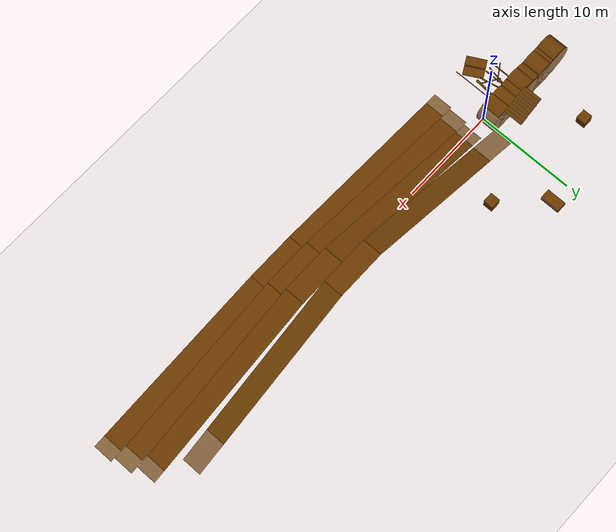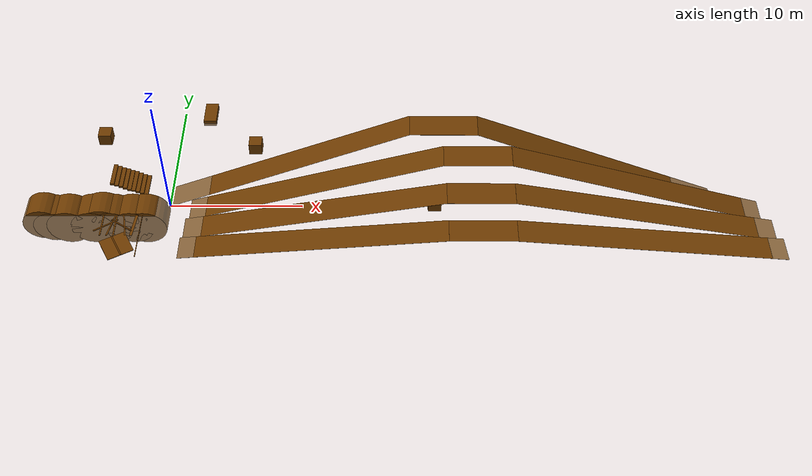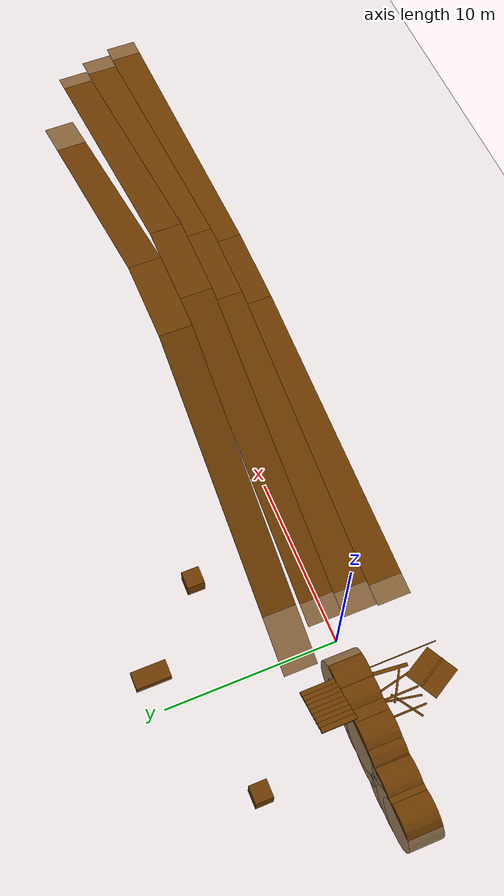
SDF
<?xml version="1.0" ?>
<sdf version="1.5">
    <world name="default">

        <physics type="ode">
        <max_step_size>0.0002</max_step_size>
        <real_time_factor>1</real_time_factor>
        <real_time_update_rate>5000</real_time_update_rate>
        <gravity>0 0 -9.81</gravity>
            <ode>
                <solver>
                <type>quick</type>
                <iters>50</iters>
                <sor>1.3</sor>
                </solver>
                <constraints>
                <cfm>0.0</cfm>
                <erp>0.2</erp>
                <contact_max_correcting_vel>10.0</contact_max_correcting_vel>
                <contact_surface_layer>0.001</contact_surface_layer>
                </constraints>
            </ode>
        </physics>

        <scene>
        <sky>
            <clouds>
                <speed>12</speed>
            </clouds>
        </sky>
        </scene>
        <!-- A global light source -->
        <include>
            <uri>model://sun</uri>
        </include>
        <!-- A ground plane -->
        <include>
            <uri>model://ground_plane</uri>
        </include>

        <!-- environment blocks, obstacles or stairs -->

        <model name="static_environment">
            <static>true</static>

            <link name="static_box1">
                <pose>6 6 0.5 0 0 0</pose>
                <collision name="static_box_collision">
                    <geometry>
                        <box>
                            <size>1 1 1</size>
                        </box>
                    </geometry>
                </collision>
                <visual name="static_box_visual">
                    <geometry>
                        <box>
                            <size>1 1 1</size>
                        </box>
                    </geometry>
                    <material>
                        <ambient>0.2 0.2 0.2 1.0</ambient>
                        <diffuse>.421 0.225 0.0 1.0</diffuse>
                    </material>
                </visual>
            </link>

            <link name="static_box2">
                <pose>20 0 0.5 0 0 0</pose>
                <collision name="static_box_collision">
                    <geometry>
                        <box>
                            <size>1 1 1</size>
                        </box>
                    </geometry>
                </collision>
                <visual name="static_box_visual">
                    <geometry>
                        <box>
                            <size>1 1 1</size>
                        </box>
                    </geometry>
                    <material>
                        <ambient>0.2 0.2 0.2 1.0</ambient>
                        <diffuse>.421 0.225 0.0 1.0</diffuse>
                    </material>
                </visual>
            </link>

            <link name="static_box3">
                <pose>-6 7 0.5 0 0 0</pose>
                <collision name="static_box_collision">
                    <geometry>
                        <box>
                            <size>1 1 1</size>
                        </box>
                    </geometry>
                </collision>
                <visual name="static_box_visual">
                    <geometry>
                        <box>
                            <size>1 1 1</size>
                        </box>
                    </geometry>
                    <material>
                        <ambient>0.2 0.2 0.2 1.0</ambient>
                        <diffuse>.421 0.225 0.0 1.0</diffuse>
                    </material>
                </visual>
            </link>
        </model>

        <model name="slope0">
                <static>true</static>
                <!-- 斜坡的物理属性 -->
                <link name="slope_physics0">
                    <pose>8.85 2.2 2.5 0 -0.4 0</pose>
                    <collision name="slope_collision">
                        <geometry>
                            <box>
                                <size>20 2 0.01</size>
                            </box>
                        </geometry>
                    </collision>
                    <visual name="slope_visual">
                        <geometry>
                            <box>
                                <size>20 2 0.01</size>
                            </box>
                        </geometry>
                        <material>
                            <ambient>0.2 0.2 0.2 1.0</ambient>
                            <diffuse>.421 0.225 0.0 1.0</diffuse>
                        </material>
                    </visual>
                    <gravity>true</gravity> <!-- 启用重力 -->
                    <self_collide>true</self_collide> <!-- 允许自身碰撞 -->
                </link>
            </model>

        <model name="slope0_2">
            <static>true</static>
            <link name="slope_physics0_2">
                <pose>20.56 2.2 6.394 0 0 0</pose>
                <collision name="slope_collision">
                    <geometry>
                        <box>
                            <size>5 2 0.01</size>
                        </box>
                    </geometry>
                    <friction>
                        <ode>
                            <mu>1.5</mu> <!-- 设置摩擦系数 -->
                        </ode>
                    </friction>
                </collision>

                <visual name="slope_visual">
                    <geometry>
                        <box>
                            <size>5 2 0.01</size>
                        </box>
                    </geometry>
                    <material>
                        <ambient>0.2 0.2 0.2 1.0</ambient>
                        <diffuse>.421 0.225 0.0 1.0</diffuse>
                    </material>
                </visual>
                <gravity>true</gravity> <!-- 启用重力 -->
                <self_collide>true</self_collide> <!-- 允许自身碰撞 -->
            </link>
        </model>

        <model name="slope0_3">
                <static>true</static>
                <!-- 斜坡的物理属性 -->
                <link name="slope_physics0_3">
                    <pose>32.25 2.2 2.5 0 0.4 0</pose>
                    <collision name="slope_collision">
                        <geometry>
                            <box>
                                <size>20 2 0.01</size>
                            </box>
                        </geometry>
                    </collision>
                    <visual name="slope_visual">
                        <geometry>
                            <box>
                                <size>20 2 0.01</size>
                            </box>
                        </geometry>
                        <material>
                            <ambient>0.2 0.2 0.2 1.0</ambient>
                            <diffuse>.421 0.225 0.0 1.0</diffuse>
                        </material>
                    </visual>
                    <gravity>true</gravity> <!-- 启用重力 -->
                    <self_collide>true</self_collide> <!-- 允许自身碰撞 -->
                </link>
            </model>

        <model name="slope">
            <static>true</static>
            <!-- 斜坡的物理属性 -->
            <link name="slope_physics">
                <pose>11 0 2.5 0 -0.3 0</pose>

                <collision name="slope_collision">
                    <geometry>
                        <box>
                            <size>20 2 0.01</size>
                        </box>
                    </geometry>
                    <friction>
                        <ode>
                            <mu>10000000</mu>
                            <mu2>10000000</mu2>
                        </ode>
                    </friction>
                </collision>

                <visual name="slope_visual">
                    <geometry>
                        <box>
                            <size>20 2 0.01</size>
                        </box>
                    </geometry>
                    <material>
                        <ambient>0.2 0.2 0.2 1.0</ambient>
                        <diffuse>.421 0.225 0.0 1.0</diffuse>
                    </material>
                </visual>
                <gravity>true</gravity> <!-- 启用重力 -->
                <self_collide>true</self_collide> <!-- 允许自身碰撞 -->
            </link>
        </model>

        <model name="slope1_2">
            <static>true</static>
            <!-- 斜坡的物理属性 -->
            <link name="slope_physics1_2">
                <pose>23.05 0 5.45 0 0 0</pose>
                <collision name="slope_collision">
                    <geometry>
                        <box>
                            <size>5 2 0.01</size>
                        </box>
                    </geometry>
                    <friction>
                        <ode>
                            <mu>10000000</mu>
                            <mu2>10000000</mu2>
                        </ode>
                    </friction>
                </collision>

                <visual name="slope_visual">
                    <geometry>
                        <box>
                            <size>5 2 0.01</size>
                        </box>
                    </geometry>
                    <material>
                        <ambient>0.2 0.2 0.2 1.0</ambient>
                        <diffuse>.421 0.225 0.0 1.0</diffuse>
                    </material>
                </visual>
                <gravity>true</gravity> <!-- 启用重力 -->
                <self_collide>true</self_collide> <!-- 允许自身碰撞 -->
            </link>
        </model>

        <model name="slope1_3">
            <static>true</static>
            <link name="slope_physics1_3">
                <pose>35.1 0 2.5 0 0.3 0</pose>
                <collision name="slope_collision">
                    <geometry>
                        <box>
                            <size>20 2 0.01</size>
                        </box>
                    </geometry>
                    <friction>
                        <ode>
                            <mu>10000000</mu>
                            <mu2>10000000</mu2>
                        </ode>
                    </friction>
                </collision>

                <visual name="slope_visual">
                    <geometry>
                        <box>
                            <size>20 2 0.01</size>
                        </box>
                    </geometry>
                    <material>
                        <ambient>0.2 0.2 0.2 1.0</ambient>
                        <diffuse>.421 0.225 0.0 1.0</diffuse>
                    </material>
                </visual>
                <gravity>true</gravity> <!-- 启用重力 -->
                <self_collide>true</self_collide> <!-- 允许自身碰撞 -->
            </link>
        </model>

        <model name="slope2">
            <static>true</static>
            <link name="slope_physics2">
                <pose>11 -2 1.64 0 -0.2 0</pose>
                <collision name="slope_collision">
                    <geometry>
                        <box>
                            <size>20 2 0.01</size>
                        </box>
                    </geometry>
                    <friction>
                        <ode>
                            <mu>1.5</mu> <!-- 设置摩擦系数 -->
                        </ode>
                    </friction>
                </collision>

                <visual name="slope_visual">
                    <geometry>
                        <box>
                            <size>20 2 0.01</size>
                        </box>
                    </geometry>
                    <material>
                        <ambient>0.2 0.2 0.2 1.0</ambient>
                        <diffuse>.421 0.225 0.0 1.0</diffuse>
                    </material>
                </visual>
                <gravity>true</gravity> <!-- 启用重力 -->
                <self_collide>true</self_collide> <!-- 允许自身碰撞 -->
            </link>
        </model>

        <model name="slope2_2">
            <static>true</static>
            <link name="slope_physics2_2">
                <pose>23.3 -2 3.625 0 0 0</pose>
                <collision name="slope_collision">
                    <geometry>
                        <box>
                            <size>5 2 0.01</size>
                        </box>
                    </geometry>
                    <friction>
                        <ode>
                            <mu>1.5</mu> <!-- 设置摩擦系数 -->
                        </ode>
                    </friction>
                </collision>

                <visual name="slope_visual">
                    <geometry>
                        <box>
                            <size>5 2 0.01</size>
                        </box>
                    </geometry>
                    <material>
                        <ambient>0.2 0.2 0.2 1.0</ambient>
                        <diffuse>.421 0.225 0.0 1.0</diffuse>
                    </material>
                </visual>
                <gravity>true</gravity> <!-- 启用重力 -->
                <self_collide>true</self_collide> <!-- 允许自身碰撞 -->
            </link>
        </model>

        <model name="slope2_3">
            <static>true</static>
            <link name="slope_physics2_3">
                <pose>35.6 -2 1.64 0 0.2 0</pose>
                <collision name="slope_collision">
                    <geometry>
                        <box>
                            <size>20 2 0.01</size>
                        </box>
                    </geometry>
                    <friction>
                        <ode>
                            <mu>1.5</mu> <!-- 设置摩擦系数 -->
                        </ode>
                    </friction>
                </collision>

                <visual name="slope_visual">
                    <geometry>
                        <box>
                            <size>20 2 0.01</size>
                        </box>
                    </geometry>
                    <material>
                        <ambient>0.2 0.2 0.2 1.0</ambient>
                        <diffuse>.421 0.225 0.0 1.0</diffuse>
                    </material>
                </visual>
                <gravity>true</gravity> <!-- 启用重力 -->
                <self_collide>true</self_collide> <!-- 允许自身碰撞 -->
            </link>
        </model>

        <model name="slope3">
            <static>true</static>
            <!-- 斜坡的物理属性 -->
            <link name="slope_physics3">
                <pose>11 -4 0.81 0 -0.1 0</pose>

                <collision name="slope_collision">
                    <geometry>
                        <box>
                            <size>20 2 0.01</size>
                        </box>
                    </geometry>
                    <friction>
                        <ode>
                            <mu>1.5</mu> <!-- 设置摩擦系数 -->
                        </ode>
                    </friction>
                </collision>

                <visual name="slope_visual">
                    <geometry>
                        <box>
                            <size>20 2 0.01</size>
                        </box>
                    </geometry>
                    <material>
                        <ambient>0.2 0.2 0.2 1.0</ambient>
                        <diffuse>.421 0.225 0.0 1.0</diffuse>
                    </material>
                </visual>
                <gravity>true</gravity> <!-- 启用重力 -->
                <self_collide>true</self_collide> <!-- 允许自身碰撞 -->
            </link>
        </model>

        <model name="slope3_2">
            <static>true</static>
            <!-- 斜坡的物理属性 -->
            <link name="slope_physics3_2">
                <pose>23.45 -4 1.81 0 0 0</pose>

                <collision name="slope_collision">
                    <geometry>
                        <box>
                            <size>5 2 0.01</size>
                        </box>
                    </geometry>
                    <friction>
                        <ode>
                            <mu>1.5</mu> <!-- 设置摩擦系数 -->
                        </ode>
                    </friction>
                </collision>

                <visual name="slope_visual">
                    <geometry>
                        <box>
                            <size>5 2 0.01</size>
                        </box>
                    </geometry>
                    <material>
                        <ambient>0.2 0.2 0.2 1.0</ambient>
                        <diffuse>.421 0.225 0.0 1.0</diffuse>
                    </material>
                </visual>
                <gravity>true</gravity> <!-- 启用重力 -->
                <self_collide>true</self_collide> <!-- 允许自身碰撞 -->
            </link>
        </model>

        <model name="slope3_3">
            <static>true</static>
            <!-- 斜坡的物理属性 -->
            <link name="slope_physics3_3">
                <pose>35.9 -4 0.81 0 0.1 0</pose>

                <collision name="slope_collision">
                    <geometry>
                        <box>
                            <size>20 2 0.01</size>
                        </box>
                    </geometry>
                    <friction>
                        <ode>
                            <mu>1.5</mu> <!-- 设置摩擦系数 -->
                        </ode>
                    </friction>
                </collision>

                <visual name="slope_visual">
                    <geometry>
                        <box>
                            <size>20 2 0.01</size>
                        </box>
                    </geometry>
                    <material>
                        <ambient>0.2 0.2 0.2 1.0</ambient>
                        <diffuse>.421 0.225 0.0 1.0</diffuse>
                    </material>
                </visual>
                <gravity>true</gravity> <!-- 启用重力 -->
                <self_collide>true</self_collide> <!-- 允许自身碰撞 -->
            </link>
        </model>

        <model name="thread_hold1">
            <static>true</static>
            <link name="thread_hold_physics_1">
                <pose>-2 -3 0.025 0 0 0</pose>
                <collision name="thread_hold_collision">
                    <geometry>
                        <box>
                            <size>0.05 4 0.05</size>
                        </box>
                    </geometry>
                    <friction>
                        <ode>
                            <mu>1.5</mu> <!-- 设置摩擦系数 -->
                        </ode>
                    </friction>
                </collision>
                <visual name="thread_hold_visual">
                    <geometry>
                        <box>
                            <size>0.05 4 0.05</size>
                        </box>
                    </geometry>
                    <material>
                        <ambient>0.2 0.2 0.2 1.0</ambient>
                        <diffuse>.421 0.225 0.0 1.0</diffuse>
                    </material>
                </visual>
                <gravity>true</gravity> <!-- 启用重力 -->
                <self_collide>true</self_collide> <!-- 允许自身碰撞 -->
            </link>
        </model>

        <model name="thread_hold2">
            <static>true</static>
            <link name="thread_hold_physics_2">
                <pose>-3.5 -4 0.025 0 0 0.5</pose>
                <collision name="thread_hold_collision">
                    <geometry>
                        <box>
                            <size>2 2 0.05</size>
                        </box>
                    </geometry>
                    <friction>
                        <ode>
                            <mu>1.5</mu> <!-- 设置摩擦系数 -->
                        </ode>
                    </friction>
                </collision>
                <visual name="thread_hold_visual">
                    <geometry>
                        <box>
                            <size>2 2 0.05</size>
                        </box>
                    </geometry>
                    <material>
                        <ambient>0.2 0.2 0.2 1.0</ambient>
                        <diffuse>.421 0.225 0.0 1.0</diffuse>
                    </material>
                </visual>
                <gravity>true</gravity> <!-- 启用重力 -->
                <self_collide>true</self_collide> <!-- 允许自身碰撞 -->
            </link>
        </model>

        <model name="thread_hold2_1">
            <static>true</static>
            <link name="thread_hold_physics_2_1">
                <pose>-3.5 -4 0.075 0 0 0.5</pose>
                <collision name="thread_hold_collision">
                    <geometry>
                        <box>
                            <size>0.1 2 0.05</size>
                        </box>
                    </geometry>
                    <friction>
                        <ode>
                            <mu>1.5</mu> <!-- 设置摩擦系数 -->
                        </ode>
                    </friction>
                </collision>
                <visual name="thread_hold_visual">
                    <geometry>
                        <box>
                            <size>0.1 2 0.05</size>
                        </box>
                    </geometry>
                    <material>
                        <ambient>0.2 0.2 0.2 1.0</ambient>
                        <diffuse>.421 0.225 0.0 1.0</diffuse>
                    </material>
                </visual>
                <gravity>true</gravity> <!-- 启用重力 -->
                <self_collide>true</self_collide> <!-- 允许自身碰撞 -->
            </link>
        </model>

        <model name="thread_hold3">
            <static>true</static>
            <link name="thread_hold_physics_3">
                <pose>-2.5 -2 0.025 0 0 -0.1</pose>
                <collision name="thread_hold_collision">
                    <geometry>
                        <box>
                            <size>0.2 2 0.05</size>
                        </box>
                    </geometry>
                    <friction>
                        <ode>
                            <mu>1.5</mu> <!-- 设置摩擦系数 -->
                        </ode>
                    </friction>
                </collision>
                <visual name="thread_hold_visual">
                    <geometry>
                        <box>
                            <size>0.2 2 0.05</size>
                        </box>
                    </geometry>
                    <material>
                        <ambient>0.2 0.2 0.2 1.0</ambient>
                        <diffuse>.421 0.225 0.0 1.0</diffuse>
                    </material>
                </visual>
                <gravity>true</gravity> <!-- 启用重力 -->
                <self_collide>true</self_collide> <!-- 允许自身碰撞 -->
            </link>
        </model>

        <model name="thread_hold4">
            <static>true</static>
            <link name="thread_hold_physics_4">
                <pose>-3.2 -2 0.025 0 0 0.2</pose>
                <collision name="thread_hold_collision">
                    <geometry>
                        <box>
                            <size>0.1 2 0.05</size>
                        </box>
                    </geometry>
                    <friction>
                        <ode>
                            <mu>1.5</mu> <!-- 设置摩擦系数 -->
                        </ode>
                    </friction>
                </collision>
                <visual name="thread_hold_visual">
                    <geometry>
                        <box>
                            <size>0.1 2 0.05</size>
                        </box>
                    </geometry>
                    <material>
                        <ambient>0.2 0.2 0.2 1.0</ambient>
                        <diffuse>.421 0.225 0.0 1.0</diffuse>
                    </material>
                </visual>
                <gravity>true</gravity> <!-- 启用重力 -->
                <self_collide>true</self_collide> <!-- 允许自身碰撞 -->
            </link>
        </model>

        <model name="thread_hold5">
            <static>true</static>
            <link name="thread_hold_physics_5">
                <pose>-3.4 -2 0.025 0 0 1</pose>
                <collision name="thread_hold_collision">
                    <geometry>
                        <box>
                            <size>0.1 2 0.05</size>
                        </box>
                    </geometry>
                    <friction>
                        <ode>
                            <mu>1.5</mu> <!-- 设置摩擦系数 -->
                        </ode>
                    </friction>
                </collision>
                <visual name="thread_hold_visual">
                    <geometry>
                        <box>
                            <size>0.1 2 0.05</size>
                        </box>
                    </geometry>
                    <material>
                        <ambient>0.2 0.2 0.2 1.0</ambient>
                        <diffuse>.421 0.225 0.0 1.0</diffuse>
                    </material>
                </visual>
                <gravity>true</gravity> <!-- 启用重力 -->
                <self_collide>true</self_collide> <!-- 允许自身碰撞 -->
            </link>
        </model>

        <model name="thread_hold6">
            <static>true</static>
            <link name="thread_hold_physics_6">
                <pose>-3.9 -2 0.025 0 0 0</pose>
                <collision name="thread_hold_collision">
                    <geometry>
                        <box>
                            <size>0.1 2 0.05</size>
                        </box>
                    </geometry>
                    <friction>
                        <ode>
                            <mu>1.5</mu> <!-- 设置摩擦系数 -->
                        </ode>
                    </friction>
                </collision>
                <visual name="thread_hold_visual">
                    <geometry>
                        <box>
                            <size>0.1 2 0.05</size>
                        </box>
                    </geometry>
                    <material>
                        <ambient>0.2 0.2 0.2 1.0</ambient>
                        <diffuse>.421 0.225 0.0 1.0</diffuse>
                    </material>
                </visual>
                <gravity>true</gravity> <!-- 启用重力 -->
                <self_collide>true</self_collide> <!-- 允许自身碰撞 -->
            </link>
        </model>

        <model name="thread_hold7">
            <static>true</static>
            <link name="thread_hold_physics_7">
                <pose>-4.2 -2 0.025 0 0 -0.2</pose>
                <collision name="thread_hold_collision">
                    <geometry>
                        <box>
                            <size>0.1 2 0.05</size>
                        </box>
                    </geometry>
                    <friction>
                        <ode>
                            <mu>1.5</mu> <!-- 设置摩擦系数 -->
                        </ode>
                    </friction>
                </collision>
                <visual name="thread_hold_visual">
                    <geometry>
                        <box>
                            <size>0.1 2 0.05</size>
                        </box>
                    </geometry>
                    <material>
                        <ambient>0.2 0.2 0.2 1.0</ambient>
                        <diffuse>.421 0.225 0.0 1.0</diffuse>
                    </material>
                </visual>
                <gravity>true</gravity> <!-- 启用重力 -->
                <self_collide>true</self_collide> <!-- 允许自身碰撞 -->
            </link>
        </model>

        <model name="thread_hold8">
            <static>true</static>
            <link name="thread_hold_physics_8">
                <pose>-4.6 -2 0.025 0 0 -1</pose>
                <collision name="thread_hold_collision">
                    <geometry>
                        <box>
                            <size>0.1 2 0.05</size>
                        </box>
                    </geometry>
                    <friction>
                        <ode>
                            <mu>1.5</mu> <!-- 设置摩擦系数 -->
                        </ode>
                    </friction>
                </collision>
                <visual name="thread_hold_visual">
                    <geometry>
                        <box>
                            <size>0.1 2 0.05</size>
                        </box>
                    </geometry>
                    <material>
                        <ambient>0.2 0.2 0.2 1.0</ambient>
                        <diffuse>.421 0.225 0.0 1.0</diffuse>
                    </material>
                </visual>
                <gravity>true</gravity> <!-- 启用重力 -->
                <self_collide>true</self_collide> <!-- 允许自身碰撞 -->
            </link>
        </model>

        <model name="thread_hold9">
            <static>true</static>
            <link name="thread_hold_physics_9">
                <pose>-4.9 -2 0.025 0 0 0</pose>
                <collision name="thread_hold_collision">
                    <geometry>
                        <box>
                            <size>0.1 2 0.05</size>
                        </box>
                    </geometry>
                    <friction>
                        <ode>
                            <mu>1.5</mu> <!-- 设置摩擦系数 -->
                        </ode>
                    </friction>
                </collision>
                <visual name="thread_hold_visual">
                    <geometry>
                        <box>
                            <size>0.1 2 0.05</size>
                        </box>
                    </geometry>
                    <material>
                        <ambient>0.2 0.2 0.2 1.0</ambient>
                        <diffuse>.421 0.225 0.0 1.0</diffuse>
                    </material>
                </visual>
                <gravity>true</gravity> <!-- 启用重力 -->
                <self_collide>true</self_collide> <!-- 允许自身碰撞 -->
            </link>
        </model>

        <model name="step1">
            <static>true</static>
            <link name="step_physics_1">
                <pose>-2 2 0.08 0 0 0</pose>
                <collision name="step_collision">
                    <geometry>
                        <box>
                            <size>0.3 2 0.16</size>
                        </box>
                    </geometry>
                    <friction>
                        <ode>
                            <mu>1.5</mu> <!-- 设置摩擦系数 -->
                        </ode>
                    </friction>
                </collision>
                <visual name="step_visual">
                    <geometry>
                        <box>
                            <size>0.3 2 0.16</size>
                        </box>
                    </geometry>
                    <material>
                        <ambient>0.2 0.2 0.2 1.0</ambient>
                        <diffuse>.421 0.225 0.0 1.0</diffuse>
                    </material>
                </visual>
                <gravity>true</gravity> <!-- 启用重力 -->
                <self_collide>true</self_collide> <!-- 允许自身碰撞 -->
            </link>
        </model>

        <model name="step2">
            <static>true</static>
            <link name="step_physics_2">
                <pose>-2.3 2 0.24 0 0 0</pose>
                <collision name="step_collision">
                    <geometry>
                        <box>
                            <size>0.3 2 0.16</size>
                        </box>
                    </geometry>
                    <friction>
                        <ode>
                            <mu>1.5</mu> <!-- 设置摩擦系数 -->
                        </ode>
                    </friction>
                </collision>
                <visual name="step_visual">
                    <geometry>
                        <box>
                            <size>0.3 2 0.16</size>
                        </box>
                    </geometry>
                    <material>
                        <ambient>0.2 0.2 0.2 1.0</ambient>
                        <diffuse>.421 0.225 0.0 1.0</diffuse>
                    </material>
                </visual>
                <gravity>true</gravity> <!-- 启用重力 -->
                <self_collide>true</self_collide> <!-- 允许自身碰撞 -->
            </link>
        </model>

        <model name="step3">
            <static>true</static>
            <link name="step_physics_3">
                <pose>-2.6 2 0.4 0 0 0</pose>
                <collision name="step_collision">
                    <geometry>
                        <box>
                            <size>0.3 2 0.16</size>
                        </box>
                    </geometry>
                    <friction>
                        <ode>
                            <mu>1.5</mu> <!-- 设置摩擦系数 -->
                        </ode>
                    </friction>
                </collision>
                <visual name="step_visual">
                    <geometry>
                        <box>
                            <size>0.3 2 0.16</size>
                        </box>
                    </geometry>
                    <material>
                        <ambient>0.2 0.2 0.2 1.0</ambient>
                        <diffuse>.421 0.225 0.0 1.0</diffuse>
                    </material>
                </visual>
                <gravity>true</gravity> <!-- 启用重力 -->
                <self_collide>true</self_collide> <!-- 允许自身碰撞 -->
            </link>
        </model>

        <model name="step4">
            <static>true</static>
            <link name="step_physics_4">
                <pose>-2.9 2 0.56 0 0 0</pose>
                <collision name="step_collision">
                    <geometry>
                        <box>
                            <size>0.3 2 0.16</size>
                        </box>
                    </geometry>
                    <friction>
                        <ode>
                            <mu>1.5</mu> <!-- 设置摩擦系数 -->
                        </ode>
                    </friction>
                </collision>
                <visual name="step_visual">
                    <geometry>
                        <box>
                            <size>0.3 2 0.16</size>
                        </box>
                    </geometry>
                    <material>
                        <ambient>0.2 0.2 0.2 1.0</ambient>
                        <diffuse>.421 0.225 0.0 1.0</diffuse>
                    </material>
                </visual>
                <gravity>true</gravity> <!-- 启用重力 -->
                <self_collide>true</self_collide> <!-- 允许自身碰撞 -->
            </link>
        </model>

        <model name="step5">
            <static>true</static>
            <link name="step_physics_5">
                <pose>-3.2 2 0.66 0 0 0</pose>
                <collision name="step_collision">
                    <geometry>
                        <box>
                            <size>0.3 2 0.16</size>
                        </box>
                    </geometry>
                    <friction>
                        <ode>
                            <mu>1.5</mu> <!-- 设置摩擦系数 -->
                        </ode>
                    </friction>
                </collision>
                <visual name="step_visual">
                    <geometry>
                        <box>
                            <size>0.3 2 0.16</size>
                        </box>
                    </geometry>
                    <material>
                        <ambient>0.2 0.2 0.2 1.0</ambient>
                        <diffuse>.421 0.225 0.0 1.0</diffuse>
                    </material>
                </visual>
                <gravity>true</gravity> <!-- 启用重力 -->
                <self_collide>true</self_collide> <!-- 允许自身碰撞 -->
            </link>
        </model>

        <model name="step6">
            <static>true</static>
            <link name="step_physics_6">
                <pose>-3.5 2 0.82 0 0 0</pose>
                <collision name="step_collision">
                    <geometry>
                        <box>
                            <size>0.3 2 0.16</size>
                        </box>
                    </geometry>
                    <friction>
                        <ode>
                            <mu>1.5</mu> <!-- 设置摩擦系数 -->
                        </ode>
                    </friction>
                </collision>
                <visual name="step_visual">
                    <geometry>
                        <box>
                            <size>0.3 2 0.16</size>
                        </box>
                    </geometry>
                    <material>
                        <ambient>0.2 0.2 0.2 1.0</ambient>
                        <diffuse>.421 0.225 0.0 1.0</diffuse>
                    </material>
                </visual>
                <gravity>true</gravity> <!-- 启用重力 -->
                <self_collide>true</self_collide> <!-- 允许自身碰撞 -->
            </link>
        </model>

        <model name="step7">
            <static>true</static>
            <link name="step_physics_7">
                <pose>-3.8 2 0.98 0 0 0</pose>
                <collision name="step_collision">
                    <geometry>
                        <box>
                            <size>0.3 2 0.16</size>
                        </box>
                    </geometry>
                    <friction>
                        <ode>
                            <mu>1.5</mu> <!-- 设置摩擦系数 -->
                        </ode>
                    </friction>
                </collision>
                <visual name="step_visual">
                    <geometry>
                        <box>
                            <size>0.3 2 0.16</size>
                        </box>
                    </geometry>
                    <material>
                        <ambient>0.2 0.2 0.2 1.0</ambient>
                        <diffuse>.421 0.225 0.0 1.0</diffuse>
                    </material>
                </visual>
                <gravity>true</gravity> <!-- 启用重力 -->
                <self_collide>true</self_collide> <!-- 允许自身碰撞 -->
            </link>
        </model>

        <model name="step8">
            <static>true</static>
            <link name="step_physics_8">
                <pose>-4.1 2 1.14 0 0 0</pose>
                <collision name="step_collision">
                    <geometry>
                        <box>
                            <size>0.3 2 0.16</size>
                        </box>
                    </geometry>
                    <friction>
                        <ode>
                            <mu>1.5</mu> <!-- 设置摩擦系数 -->
                        </ode>
                    </friction>
                </collision>
                <visual name="step_visual">
                    <geometry>
                        <box>
                            <size>0.3 2 0.16</size>
                        </box>
                    </geometry>
                    <material>
                        <ambient>0.2 0.2 0.2 1.0</ambient>
                        <diffuse>.421 0.225 0.0 1.0</diffuse>
                    </material>
                </visual>
                <gravity>true</gravity> <!-- 启用重力 -->
                <self_collide>true</self_collide> <!-- 允许自身碰撞 -->
            </link>
        </model>

        <model name="step9">
            <static>true</static>
            <link name="step_physics_9">
                <pose>-4.4 2 1.30 0 0 0</pose>
                <collision name="step_collision">
                    <geometry>
                        <box>
                            <size>0.3 2 0.16</size>
                        </box>
                    </geometry>
                    <friction>
                        <ode>
                            <mu>1.5</mu> <!-- 设置摩擦系数 -->
                        </ode>
                    </friction>
                </collision>
                <visual name="step_visual">
                    <geometry>
                        <box>
                            <size>0.3 2 0.16</size>
                        </box>
                    </geometry>
                    <material>
                        <ambient>0.2 0.2 0.2 1.0</ambient>
                        <diffuse>.421 0.225 0.0 1.0</diffuse>
                    </material>
                </visual>
                <gravity>true</gravity> <!-- 启用重力 -->
                <self_collide>true</self_collide> <!-- 允许自身碰撞 -->
            </link>
        </model>

    <model name="wave1">
        <static>true</static>
        <link name="wave_link1">
            <pose>-2 0 -1.4 1.571 0 0</pose> <!-- 设置圆柱体的位置和姿态 -->
            <collision name="wave_collision">
                <geometry>
                    <cylinder>
                        <radius>1.65</radius> <!-- 设置圆柱体的半径 -->
                        <length>2</length> <!-- 设置圆柱体的长度 -->
                    </cylinder>
                </geometry>
                <surface>
                    <friction>
                        <ode>
                            <mu>1.5</mu> <!-- 设置摩擦系数 -->
                        </ode>
                    </friction>
                </surface>
            </collision>
            <visual name="wave_visual">
                <geometry>
                    <cylinder>
                        <radius>1.65</radius> <!-- 设置圆柱体的半径 -->
                        <length>2</length> <!-- 设置圆柱体的长度 -->
                    </cylinder>
                </geometry>
                <material>
                    <ambient>0.2 0.2 0.2 1.0</ambient>
                    <diffuse>0.421 0.225 0.0 1.0</diffuse>
                </material>
            </visual>
        </link>
    </model>

    <model name="wave2">
        <static>true</static>
        <link name="wave_link2">
            <pose>-3 0 -1.4 1.571 0 0</pose> <!-- 设置圆柱体的位置和姿态 -->
            <collision name="wave_collision">
                <geometry>
                    <cylinder>
                        <radius>1.65</radius> <!-- 设置圆柱体的半径 -->
                        <length>2</length> <!-- 设置圆柱体的长度 -->
                    </cylinder>
                </geometry>
                <surface>
                    <friction>
                        <ode>
                            <mu>1.5</mu> <!-- 设置摩擦系数 -->
                        </ode>
                    </friction>
                </surface>
            </collision>
            <visual name="wave_visual">
                <geometry>
                    <cylinder>
                        <radius>1.65</radius> <!-- 设置圆柱体的半径 -->
                        <length>2</length> <!-- 设置圆柱体的长度 -->
                    </cylinder>
                </geometry>
                <material>
                    <ambient>0.2 0.2 0.2 1.0</ambient>
                    <diffuse>0.421 0.225 0.0 1.0</diffuse>
                </material>
            </visual>
        </link>
    </model>

    <model name="wave3">
        <static>true</static>
        <link name="wave_link3">
            <pose>-4.5 0 -1.4 1.571 0 0</pose> <!-- 设置圆柱体的位置和姿态 -->
            <collision name="wave_collision">
                <geometry>
                    <cylinder>
                        <radius>1.65</radius> <!-- 设置圆柱体的半径 -->
                        <length>2</length> <!-- 设置圆柱体的长度 -->
                    </cylinder>
                </geometry>
                <surface>
                    <friction>
                        <ode>
                            <mu>1.5</mu> <!-- 设置摩擦系数 -->
                        </ode>
                    </friction>
                </surface>
            </collision>
            <visual name="wave_visual">
                <geometry>
                    <cylinder>
                        <radius>1.65</radius> <!-- 设置圆柱体的半径 -->
                        <length>2</length> <!-- 设置圆柱体的长度 -->
                    </cylinder>
                </geometry>
                <material>
                    <ambient>0.2 0.2 0.2 1.0</ambient>
                    <diffuse>0.421 0.225 0.0 1.0</diffuse>
                </material>
            </visual>
        </link>
    </model>

    <model name="wave4">
        <static>true</static>
        <link name="wave_link4">
            <pose>-5.25 0 -1.2 1.571 0 0</pose> <!-- 设置圆柱体的位置和姿态 -->
            <collision name="wave_collision">
                <geometry>
                    <cylinder>
                        <radius>1.65</radius> <!-- 设置圆柱体的半径 -->
                        <length>2</length> <!-- 设置圆柱体的长度 -->
                    </cylinder>
                </geometry>
                <surface>
                    <friction>
                        <ode>
                            <mu>1.5</mu> <!-- 设置摩擦系数 -->
                        </ode>
                    </friction>
                </surface>
            </collision>
            <visual name="wave_visual">
                <geometry>
                    <cylinder>
                        <radius>1.65</radius> <!-- 设置圆柱体的半径 -->
                        <length>2</length> <!-- 设置圆柱体的长度 -->
                    </cylinder>
                </geometry>
                <material>
                    <ambient>0.2 0.2 0.2 1.0</ambient>
                    <diffuse>0.421 0.225 0.0 1.0</diffuse>
                </material>
            </visual>
        </link>
    </model>

    <model name="wave5">
        <static>true</static>
        <link name="wave_link5">
            <pose>-6 0 -1.4 1.571 0 0</pose> <!-- 设置圆柱体的位置和姿态 -->
            <collision name="wave_collision">
                <geometry>
                    <cylinder>
                        <radius>1.65</radius> <!-- 设置圆柱体的半径 -->
                        <length>2</length> <!-- 设置圆柱体的长度 -->
                    </cylinder>
                </geometry>
                <surface>
                    <friction>
                        <ode>
                            <mu>1.5</mu> <!-- 设置摩擦系数 -->
                        </ode>
                    </friction>
                </surface>
            </collision>
            <visual name="wave_visual">
                <geometry>
                    <cylinder>
                        <radius>1.65</radius> <!-- 设置圆柱体的半径 -->
                        <length>2</length> <!-- 设置圆柱体的长度 -->
                    </cylinder>
                </geometry>
                <material>
                    <ambient>0.2 0.2 0.2 1.0</ambient>
                    <diffuse>0.421 0.225 0.0 1.0</diffuse>
                </material>
            </visual>
        </link>
    </model>

    <model name="wave6">
        <static>true</static>
        <link name="wave_link6">
            <pose>-7.85 0 -1.4 1.571 0 0</pose> <!-- 设置圆柱体的位置和姿态 -->
            <collision name="wave_collision">
                <geometry>
                    <cylinder>
                        <radius>1.65</radius> <!-- 设置圆柱体的半径 -->
                        <length>2</length> <!-- 设置圆柱体的长度 -->
                    </cylinder>
                </geometry>
                <surface>
                    <friction>
                        <ode>
                            <mu>1.5</mu> <!-- 设置摩擦系数 -->
                        </ode>
                    </friction>
                </surface>
            </collision>
            <visual name="wave_visual">
                <geometry>
                    <cylinder>
                        <radius>1.65</radius> <!-- 设置圆柱体的半径 -->
                        <length>2</length> <!-- 设置圆柱体的长度 -->
                    </cylinder>
                </geometry>
                <material>
                    <ambient>0.2 0.2 0.2 1.0</ambient>
                    <diffuse>0.421 0.225 0.0 1.0</diffuse>
                </material>
            </visual>
        </link>
    </model>

    <model name="wave7">
        <static>true</static>
        <link name="wave_link7">
            <pose>-9 0 -1.35 1.571 0 0</pose> <!-- 设置圆柱体的位置和姿态 -->
            <collision name="wave_collision">
                <geometry>
                    <cylinder>
                        <radius>1.5</radius> <!-- 设置圆柱体的半径 -->
                        <length>2</length> <!-- 设置圆柱体的长度 -->
                    </cylinder>
                </geometry>
                <surface>
                    <friction>
                        <ode>
                            <mu>1.5</mu> <!-- 设置摩擦系数 -->
                        </ode>
                    </friction>
                </surface>
            </collision>
            <visual name="wave_visual">
                <geometry>
                    <cylinder>
                        <radius>1.5</radius> <!-- 设置圆柱体的半径 -->
                        <length>2</length> <!-- 设置圆柱体的长度 -->
                    </cylinder>
                </geometry>
                <material>
                    <ambient>0.2 0.2 0.2 1.0</ambient>
                    <diffuse>0.421 0.225 0.0 1.0</diffuse>
                </material>
            </visual>
        </link>
    </model>

    <model name="wave8">
        <static>true</static>
        <link name="wave_link8">
            <pose>-9.75 0 -1.1 1.571 0 0</pose> <!-- 设置圆柱体的位置和姿态 -->
            <collision name="wave_collision">
                <geometry>
                    <cylinder>
                        <radius>1.5</radius> <!-- 设置圆柱体的半径 -->
                        <length>2</length> <!-- 设置圆柱体的长度 -->
                    </cylinder>
                </geometry>
                <surface>
                    <friction>
                        <ode>
                            <mu>1.5</mu> <!-- 设置摩擦系数 -->
                        </ode>
                    </friction>
                </surface>
            </collision>
            <visual name="wave_visual">
                <geometry>
                    <cylinder>
                        <radius>1.5</radius> <!-- 设置圆柱体的半径 -->
                        <length>2</length> <!-- 设置圆柱体的长度 -->
                    </cylinder>
                </geometry>
                <material>
                    <ambient>0.2 0.2 0.2 1.0</ambient>
                    <diffuse>0.421 0.225 0.0 1.0</diffuse>
                </material>
            </visual>
        </link>
    </model>

    <model name="ABigStep">
        <static>true</static>
        <link name="ABigStep_L">
            <pose>2 10 0 0 0 0</pose>
            <collision name="ABigStep_C">
                <geometry>
                    <box>
                        <size>1 2 0.5</size>
                    </box>
                </geometry>
                <friction>
                    <ode>
                        <mu>1.5</mu> <!-- 设置摩擦系数 -->
                    </ode>
                </friction>
            </collision>
            <visual name="step_visual">
                <geometry>
                    <box>
                        <size>1 2 0.5</size>
                    </box>
                </geometry>
                <material>
                    <ambient>0.2 0.2 0.2 1.0</ambient>
                    <diffuse>.421 0.225 0.0 1.0</diffuse>
                </material>
            </visual>
            <gravity>true</gravity> <!-- 启用重力 -->
            <self_collide>true</self_collide> <!-- 允许自身碰撞 -->
        </link>
    </model>

    </world>
</sdf>
